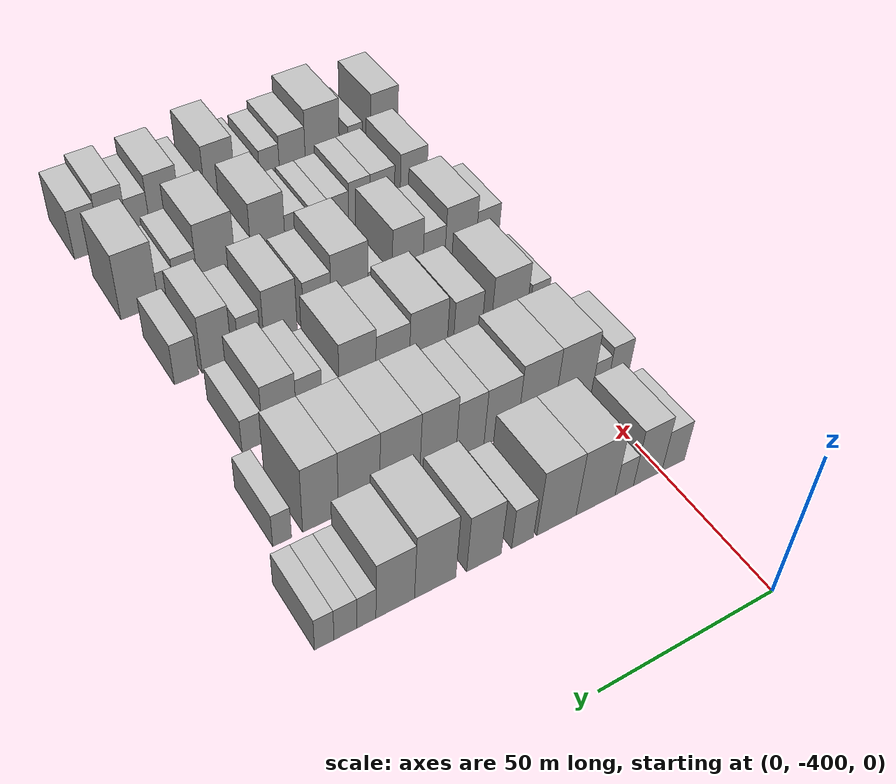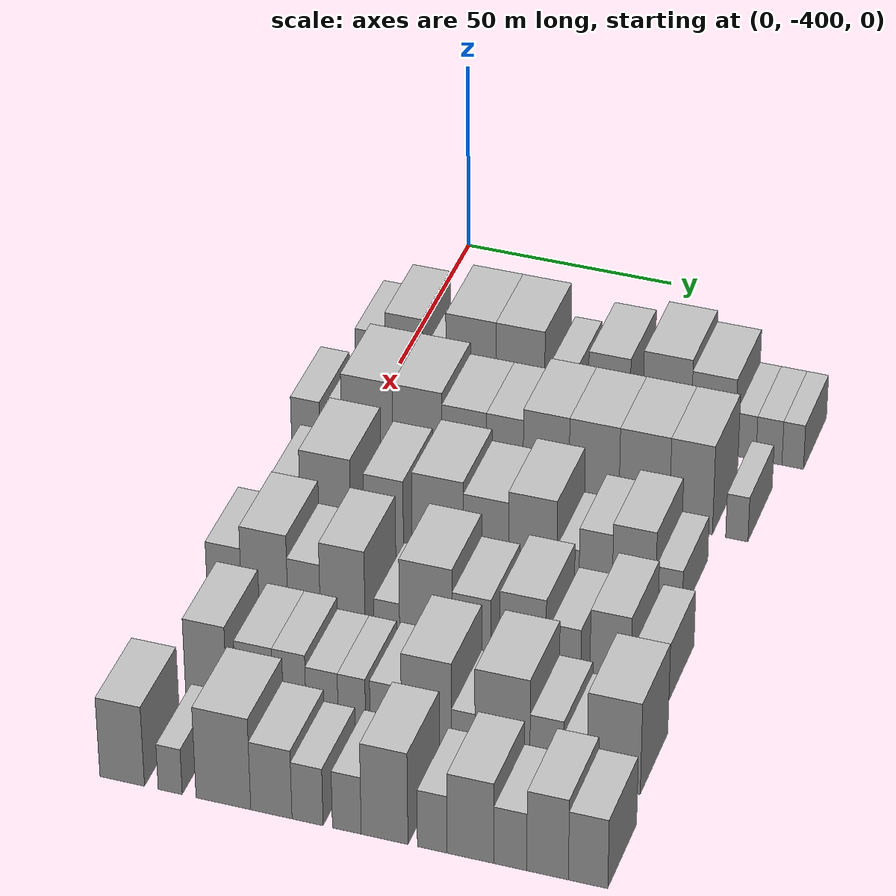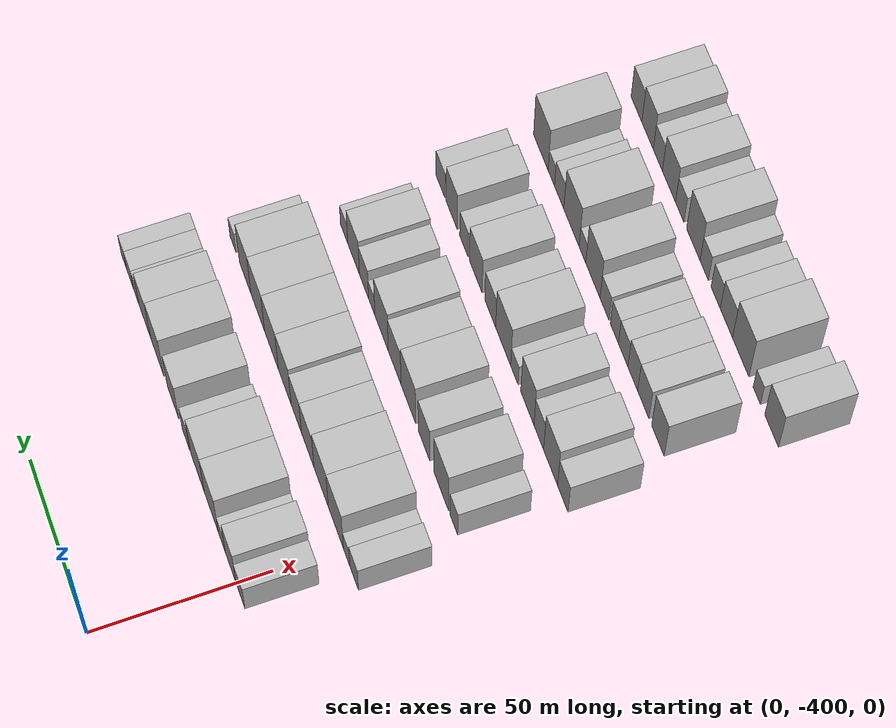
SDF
<sdf version="1.6">
 <world name="default">
  <model name="building_12">
   <static>1</static>
   <pose>50.0000 -403.6779 0 0.000000 0.000000 0.000000</pose>
   <link name="link">
    <pose>0 0 7.50 0 0 0</pose>
    <collision name="collision"><geometry><box><size>20.0000 7.1489 15.0000</size></box></geometry></collision>
    <visual name="visual">
     <cast_shadows>0</cast_shadows>
     <geometry><box><size>20.0000 7.1489 15.0000</size></box></geometry>
     <material>
      <script>
       <uri>model://HANNAS_wall/materials/scripts</uri>
       <uri>model://HANNAS_wall/materials/textures</uri>
       <name>vrc/HANNAS_wall</name>
      </script>
     </material>
    </visual>
   </link>
  </model>
  <model name="building_13">
   <static>1</static>
   <pose>50.0000 -395.6490 0 0.000000 0.000000 0.000000</pose>
   <link name="link">
    <pose>0 0 10.50 0 0 0</pose>
    <collision name="collision"><geometry><box><size>20.0000 8.9090 21.0000</size></box></geometry></collision>
    <visual name="visual">
     <cast_shadows>0</cast_shadows>
     <geometry><box><size>20.0000 8.9090 21.0000</size></box></geometry>
     <material>
      <script>
       <uri>model://HANNAS_wall/materials/scripts</uri>
       <uri>model://HANNAS_wall/materials/textures</uri>
       <name>vrc/HANNAS_wall</name>
      </script>
     </material>
    </visual>
   </link>
  </model>
  <model name="building_14">
   <static>1</static>
   <pose>50.0000 -388.3888 0 0.000000 0.000000 0.000000</pose>
   <link name="link">
    <pose>0 0 6.00 0 0 0</pose>
    <collision name="collision"><geometry><box><size>20.0000 5.6112 12.0000</size></box></geometry></collision>
    <visual name="visual">
     <cast_shadows>0</cast_shadows>
     <geometry><box><size>20.0000 5.6112 12.0000</size></box></geometry>
     <material>
      <script>
       <uri>model://HANNAS_wall/materials/scripts</uri>
       <uri>model://HANNAS_wall/materials/textures</uri>
       <name>vrc/HANNAS_wall</name>
      </script>
     </material>
    </visual>
   </link>
  </model>
  <model name="building_15">
   <static>1</static>
   <pose>50.0000 -379.6603 0 0.000000 0.000000 0.000000</pose>
   <link name="link">
    <pose>0 0 12.00 0 0 0</pose>
    <collision name="collision"><geometry><box><size>20.0000 11.8460 24.0000</size></box></geometry></collision>
    <visual name="visual">
     <cast_shadows>0</cast_shadows>
     <geometry><box><size>20.0000 11.8460 24.0000</size></box></geometry>
     <material>
      <script>
       <uri>model://HANNAS_wall/materials/scripts</uri>
       <uri>model://HANNAS_wall/materials/textures</uri>
       <name>vrc/HANNAS_wall</name>
      </script>
     </material>
    </visual>
   </link>
  </model>
  <model name="building_16">
   <static>1</static>
   <pose>50.0000 -367.9812 0 0.000000 0.000000 0.000000</pose>
   <link name="link">
    <pose>0 0 12.00 0 0 0</pose>
    <collision name="collision"><geometry><box><size>20.0000 11.5121 24.0000</size></box></geometry></collision>
    <visual name="visual">
     <cast_shadows>0</cast_shadows>
     <geometry><box><size>20.0000 11.5121 24.0000</size></box></geometry>
     <material>
      <script>
       <uri>model://HANNAS_wall/materials/scripts</uri>
       <uri>model://HANNAS_wall/materials/textures</uri>
       <name>vrc/HANNAS_wall</name>
      </script>
     </material>
    </visual>
   </link>
  </model>
  <model name="building_17">
   <static>1</static>
   <pose>50.0000 -358.0856 0 0.000000 0.000000 0.000000</pose>
   <link name="link">
    <pose>0 0 7.50 0 0 0</pose>
    <collision name="collision"><geometry><box><size>20.0000 6.2792 15.0000</size></box></geometry></collision>
    <visual name="visual">
     <cast_shadows>0</cast_shadows>
     <geometry><box><size>20.0000 6.2792 15.0000</size></box></geometry>
     <material>
      <script>
       <uri>model://HANNAS_wall/materials/scripts</uri>
       <uri>model://HANNAS_wall/materials/textures</uri>
       <name>vrc/HANNAS_wall</name>
      </script>
     </material>
    </visual>
   </link>
  </model>
  <model name="building_18">
   <static>1</static>
   <pose>50.0000 -347.0845 0 0.000000 0.000000 0.000000</pose>
   <link name="link">
    <pose>0 0 10.50 0 0 0</pose>
    <collision name="collision"><geometry><box><size>20.0000 9.7231 21.0000</size></box></geometry></collision>
    <visual name="visual">
     <cast_shadows>0</cast_shadows>
     <geometry><box><size>20.0000 9.7231 21.0000</size></box></geometry>
     <material>
      <script>
       <uri>model://HANNAS_wall/materials/scripts</uri>
       <uri>model://HANNAS_wall/materials/textures</uri>
       <name>vrc/HANNAS_wall</name>
      </script>
     </material>
    </visual>
   </link>
  </model>
  <model name="building_19">
   <static>1</static>
   <pose>50.0000 -333.5876 0 0.000000 0.000000 0.000000</pose>
   <link name="link">
    <pose>0 0 12.00 0 0 0</pose>
    <collision name="collision"><geometry><box><size>20.0000 11.2706 24.0000</size></box></geometry></collision>
    <visual name="visual">
     <cast_shadows>0</cast_shadows>
     <geometry><box><size>20.0000 11.2706 24.0000</size></box></geometry>
     <material>
      <script>
       <uri>model://HANNAS_wall/materials/scripts</uri>
       <uri>model://HANNAS_wall/materials/textures</uri>
       <name>vrc/HANNAS_wall</name>
      </script>
     </material>
    </visual>
   </link>
  </model>
  <model name="building_20">
   <static>1</static>
   <pose>50.0000 -322.8248 0 0.000000 0.000000 0.000000</pose>
   <link name="link">
    <pose>0 0 10.50 0 0 0</pose>
    <collision name="collision"><geometry><box><size>20.0000 10.2550 21.0000</size></box></geometry></collision>
    <visual name="visual">
     <cast_shadows>0</cast_shadows>
     <geometry><box><size>20.0000 10.2550 21.0000</size></box></geometry>
     <material>
      <script>
       <uri>model://HANNAS_wall/materials/scripts</uri>
       <uri>model://HANNAS_wall/materials/textures</uri>
       <name>vrc/HANNAS_wall</name>
      </script>
     </material>
    </visual>
   </link>
  </model>
  <model name="building_21">
   <static>1</static>
   <pose>50.0000 -315.2294 0 0.000000 0.000000 0.000000</pose>
   <link name="link">
    <pose>0 0 6.00 0 0 0</pose>
    <collision name="collision"><geometry><box><size>20.0000 4.9359 12.0000</size></box></geometry></collision>
    <visual name="visual">
     <cast_shadows>0</cast_shadows>
     <geometry><box><size>20.0000 4.9359 12.0000</size></box></geometry>
     <material>
      <script>
       <uri>model://HANNAS_wall/materials/scripts</uri>
       <uri>model://HANNAS_wall/materials/textures</uri>
       <name>vrc/HANNAS_wall</name>
      </script>
     </material>
    </visual>
   </link>
  </model>
  <model name="building_22">
   <static>1</static>
   <pose>50.0000 -309.7758 0 0.000000 0.000000 0.000000</pose>
   <link name="link">
    <pose>0 0 6.00 0 0 0</pose>
    <collision name="collision"><geometry><box><size>20.0000 5.9713 12.0000</size></box></geometry></collision>
    <visual name="visual">
     <cast_shadows>0</cast_shadows>
     <geometry><box><size>20.0000 5.9713 12.0000</size></box></geometry>
     <material>
      <script>
       <uri>model://HANNAS_wall/materials/scripts</uri>
       <uri>model://HANNAS_wall/materials/textures</uri>
       <name>vrc/HANNAS_wall</name>
      </script>
     </material>
    </visual>
   </link>
  </model>
  <model name="building_23">
   <static>1</static>
   <pose>50.0000 -304.3041 0 0.000000 0.000000 0.000000</pose>
   <link name="link">
    <pose>0 0 6.00 0 0 0</pose>
    <collision name="collision"><geometry><box><size>20.0000 4.9721 12.0000</size></box></geometry></collision>
    <visual name="visual">
     <cast_shadows>0</cast_shadows>
     <geometry><box><size>20.0000 4.9721 12.0000</size></box></geometry>
     <material>
      <script>
       <uri>model://HANNAS_wall/materials/scripts</uri>
       <uri>model://HANNAS_wall/materials/textures</uri>
       <name>vrc/HANNAS_wall</name>
      </script>
     </material>
    </visual>
   </link>
  </model>
  <model name="building_118">
   <static>1</static>
   <pose>79.0000 -408.8224 0 0.000000 0.000000 0.000000</pose>
   <link name="link">
    <pose>0 0 7.50 0 0 0</pose>
    <collision name="collision"><geometry><box><size>20.0000 6.7945 15.0000</size></box></geometry></collision>
    <visual name="visual">
     <cast_shadows>0</cast_shadows>
     <geometry><box><size>20.0000 6.7945 15.0000</size></box></geometry>
     <material>
      <script>
       <uri>model://HANNAS_wall/materials/scripts</uri>
       <uri>model://HANNAS_wall/materials/textures</uri>
       <name>vrc/HANNAS_wall</name>
      </script>
     </material>
    </visual>
   </link>
  </model>
  <model name="building_119">
   <static>1</static>
   <pose>79.0000 -402.8554 0 0.000000 0.000000 0.000000</pose>
   <link name="link">
    <pose>0 0 6.00 0 0 0</pose>
    <collision name="collision"><geometry><box><size>20.0000 5.1395 12.0000</size></box></geometry></collision>
    <visual name="visual">
     <cast_shadows>0</cast_shadows>
     <geometry><box><size>20.0000 5.1395 12.0000</size></box></geometry>
     <material>
      <script>
       <uri>model://HANNAS_wall/materials/scripts</uri>
       <uri>model://HANNAS_wall/materials/textures</uri>
       <name>vrc/HANNAS_wall</name>
      </script>
     </material>
    </visual>
   </link>
  </model>
  <model name="building_120">
   <static>1</static>
   <pose>79.0000 -394.3007 0 0.000000 0.000000 0.000000</pose>
   <link name="link">
    <pose>0 0 12.00 0 0 0</pose>
    <collision name="collision"><geometry><box><size>20.0000 11.9698 24.0000</size></box></geometry></collision>
    <visual name="visual">
     <cast_shadows>0</cast_shadows>
     <geometry><box><size>20.0000 11.9698 24.0000</size></box></geometry>
     <material>
      <script>
       <uri>model://HANNAS_wall/materials/scripts</uri>
       <uri>model://HANNAS_wall/materials/textures</uri>
       <name>vrc/HANNAS_wall</name>
      </script>
     </material>
    </visual>
   </link>
  </model>
  <model name="building_121">
   <static>1</static>
   <pose>79.0000 -382.5438 0 0.000000 0.000000 0.000000</pose>
   <link name="link">
    <pose>0 0 12.00 0 0 0</pose>
    <collision name="collision"><geometry><box><size>20.0000 11.5439 24.0000</size></box></geometry></collision>
    <visual name="visual">
     <cast_shadows>0</cast_shadows>
     <geometry><box><size>20.0000 11.5439 24.0000</size></box></geometry>
     <material>
      <script>
       <uri>model://HANNAS_wall/materials/scripts</uri>
       <uri>model://HANNAS_wall/materials/textures</uri>
       <name>vrc/HANNAS_wall</name>
      </script>
     </material>
    </visual>
   </link>
  </model>
  <model name="building_122">
   <static>1</static>
   <pose>79.0000 -371.6395 0 0.000000 0.000000 0.000000</pose>
   <link name="link">
    <pose>0 0 10.50 0 0 0</pose>
    <collision name="collision"><geometry><box><size>20.0000 10.2648 21.0000</size></box></geometry></collision>
    <visual name="visual">
     <cast_shadows>0</cast_shadows>
     <geometry><box><size>20.0000 10.2648 21.0000</size></box></geometry>
     <material>
      <script>
       <uri>model://HANNAS_wall/materials/scripts</uri>
       <uri>model://HANNAS_wall/materials/textures</uri>
       <name>vrc/HANNAS_wall</name>
      </script>
     </material>
    </visual>
   </link>
  </model>
  <model name="building_123">
   <static>1</static>
   <pose>79.0000 -362.2586 0 0.000000 0.000000 0.000000</pose>
   <link name="link">
    <pose>0 0 10.50 0 0 0</pose>
    <collision name="collision"><geometry><box><size>20.0000 8.4968 21.0000</size></box></geometry></collision>
    <visual name="visual">
     <cast_shadows>0</cast_shadows>
     <geometry><box><size>20.0000 8.4968 21.0000</size></box></geometry>
     <material>
      <script>
       <uri>model://HANNAS_wall/materials/scripts</uri>
       <uri>model://HANNAS_wall/materials/textures</uri>
       <name>vrc/HANNAS_wall</name>
      </script>
     </material>
    </visual>
   </link>
  </model>
  <model name="building_124">
   <static>1</static>
   <pose>79.0000 -352.7343 0 0.000000 0.000000 0.000000</pose>
   <link name="link">
    <pose>0 0 12.00 0 0 0</pose>
    <collision name="collision"><geometry><box><size>20.0000 10.5519 24.0000</size></box></geometry></collision>
    <visual name="visual">
     <cast_shadows>0</cast_shadows>
     <geometry><box><size>20.0000 10.5519 24.0000</size></box></geometry>
     <material>
      <script>
       <uri>model://HANNAS_wall/materials/scripts</uri>
       <uri>model://HANNAS_wall/materials/textures</uri>
       <name>vrc/HANNAS_wall</name>
      </script>
     </material>
    </visual>
   </link>
  </model>
  <model name="building_125">
   <static>1</static>
   <pose>79.0000 -341.7215 0 0.000000 0.000000 0.000000</pose>
   <link name="link">
    <pose>0 0 12.00 0 0 0</pose>
    <collision name="collision"><geometry><box><size>20.0000 11.4736 24.0000</size></box></geometry></collision>
    <visual name="visual">
     <cast_shadows>0</cast_shadows>
     <geometry><box><size>20.0000 11.4736 24.0000</size></box></geometry>
     <material>
      <script>
       <uri>model://HANNAS_wall/materials/scripts</uri>
       <uri>model://HANNAS_wall/materials/textures</uri>
       <name>vrc/HANNAS_wall</name>
      </script>
     </material>
    </visual>
   </link>
  </model>
  <model name="building_126">
   <static>1</static>
   <pose>79.0000 -330.2217 0 0.000000 0.000000 0.000000</pose>
   <link name="link">
    <pose>0 0 12.00 0 0 0</pose>
    <collision name="collision"><geometry><box><size>20.0000 11.5260 24.0000</size></box></geometry></collision>
    <visual name="visual">
     <cast_shadows>0</cast_shadows>
     <geometry><box><size>20.0000 11.5260 24.0000</size></box></geometry>
     <material>
      <script>
       <uri>model://HANNAS_wall/materials/scripts</uri>
       <uri>model://HANNAS_wall/materials/textures</uri>
       <name>vrc/HANNAS_wall</name>
      </script>
     </material>
    </visual>
   </link>
  </model>
  <model name="building_127">
   <static>1</static>
   <pose>79.0000 -319.5378 0 0.000000 0.000000 0.000000</pose>
   <link name="link">
    <pose>0 0 12.00 0 0 0</pose>
    <collision name="collision"><geometry><box><size>20.0000 9.8417 24.0000</size></box></geometry></collision>
    <visual name="visual">
     <cast_shadows>0</cast_shadows>
     <geometry><box><size>20.0000 9.8417 24.0000</size></box></geometry>
     <material>
      <script>
       <uri>model://HANNAS_wall/materials/scripts</uri>
       <uri>model://HANNAS_wall/materials/textures</uri>
       <name>vrc/HANNAS_wall</name>
      </script>
     </material>
    </visual>
   </link>
  </model>
  <model name="building_128">
   <static>1</static>
   <pose>79.0000 -309.0951 0 0.000000 0.000000 0.000000</pose>
   <link name="link">
    <pose>0 0 6.00 0 0 0</pose>
    <collision name="collision"><geometry><box><size>20.0000 5.0437 12.0000</size></box></geometry></collision>
    <visual name="visual">
     <cast_shadows>0</cast_shadows>
     <geometry><box><size>20.0000 5.0437 12.0000</size></box></geometry>
     <material>
      <script>
       <uri>model://HANNAS_wall/materials/scripts</uri>
       <uri>model://HANNAS_wall/materials/textures</uri>
       <name>vrc/HANNAS_wall</name>
      </script>
     </material>
    </visual>
   </link>
  </model>
  <model name="building_232">
   <static>1</static>
   <pose>108.0000 -403.5453 0 0.000000 0.000000 0.000000</pose>
   <link name="link">
    <pose>0 0 7.50 0 0 0</pose>
    <collision name="collision"><geometry><box><size>20.0000 6.0070 15.0000</size></box></geometry></collision>
    <visual name="visual">
     <cast_shadows>0</cast_shadows>
     <geometry><box><size>20.0000 6.0070 15.0000</size></box></geometry>
     <material>
      <script>
       <uri>model://HANNAS_wall/materials/scripts</uri>
       <uri>model://HANNAS_wall/materials/textures</uri>
       <name>vrc/HANNAS_wall</name>
      </script>
     </material>
    </visual>
   </link>
  </model>
  <model name="building_233">
   <static>1</static>
   <pose>108.0000 -393.7215 0 0.000000 0.000000 0.000000</pose>
   <link name="link">
    <pose>0 0 12.00 0 0 0</pose>
    <collision name="collision"><geometry><box><size>20.0000 11.6405 24.0000</size></box></geometry></collision>
    <visual name="visual">
     <cast_shadows>0</cast_shadows>
     <geometry><box><size>20.0000 11.6405 24.0000</size></box></geometry>
     <material>
      <script>
       <uri>model://HANNAS_wall/materials/scripts</uri>
       <uri>model://HANNAS_wall/materials/textures</uri>
       <name>vrc/HANNAS_wall</name>
      </script>
     </material>
    </visual>
   </link>
  </model>
  <model name="building_234">
   <static>1</static>
   <pose>108.0000 -380.3955 0 0.000000 0.000000 0.000000</pose>
   <link name="link">
    <pose>0 0 10.50 0 0 0</pose>
    <collision name="collision"><geometry><box><size>20.0000 9.0116 21.0000</size></box></geometry></collision>
    <visual name="visual">
     <cast_shadows>0</cast_shadows>
     <geometry><box><size>20.0000 9.0116 21.0000</size></box></geometry>
     <material>
      <script>
       <uri>model://HANNAS_wall/materials/scripts</uri>
       <uri>model://HANNAS_wall/materials/textures</uri>
       <name>vrc/HANNAS_wall</name>
      </script>
     </material>
    </visual>
   </link>
  </model>
  <model name="building_235">
   <static>1</static>
   <pose>108.0000 -368.0602 0 0.000000 0.000000 0.000000</pose>
   <link name="link">
    <pose>0 0 12.00 0 0 0</pose>
    <collision name="collision"><geometry><box><size>20.0000 11.6592 24.0000</size></box></geometry></collision>
    <visual name="visual">
     <cast_shadows>0</cast_shadows>
     <geometry><box><size>20.0000 11.6592 24.0000</size></box></geometry>
     <material>
      <script>
       <uri>model://HANNAS_wall/materials/scripts</uri>
       <uri>model://HANNAS_wall/materials/textures</uri>
       <name>vrc/HANNAS_wall</name>
      </script>
     </material>
    </visual>
   </link>
  </model>
  <model name="building_236">
   <static>1</static>
   <pose>108.0000 -357.1429 0 0.000000 0.000000 0.000000</pose>
   <link name="link">
    <pose>0 0 10.50 0 0 0</pose>
    <collision name="collision"><geometry><box><size>20.0000 10.1754 21.0000</size></box></geometry></collision>
    <visual name="visual">
     <cast_shadows>0</cast_shadows>
     <geometry><box><size>20.0000 10.1754 21.0000</size></box></geometry>
     <material>
      <script>
       <uri>model://HANNAS_wall/materials/scripts</uri>
       <uri>model://HANNAS_wall/materials/textures</uri>
       <name>vrc/HANNAS_wall</name>
      </script>
     </material>
    </visual>
   </link>
  </model>
  <model name="building_237">
   <static>1</static>
   <pose>108.0000 -346.6223 0 0.000000 0.000000 0.000000</pose>
   <link name="link">
    <pose>0 0 12.00 0 0 0</pose>
    <collision name="collision"><geometry><box><size>20.0000 10.8658 24.0000</size></box></geometry></collision>
    <visual name="visual">
     <cast_shadows>0</cast_shadows>
     <geometry><box><size>20.0000 10.8658 24.0000</size></box></geometry>
     <material>
      <script>
       <uri>model://HANNAS_wall/materials/scripts</uri>
       <uri>model://HANNAS_wall/materials/textures</uri>
       <name>vrc/HANNAS_wall</name>
      </script>
     </material>
    </visual>
   </link>
  </model>
  <model name="building_238">
   <static>1</static>
   <pose>108.0000 -338.6796 0 0.000000 0.000000 0.000000</pose>
   <link name="link">
    <pose>0 0 6.00 0 0 0</pose>
    <collision name="collision"><geometry><box><size>20.0000 5.0195 12.0000</size></box></geometry></collision>
    <visual name="visual">
     <cast_shadows>0</cast_shadows>
     <geometry><box><size>20.0000 5.0195 12.0000</size></box></geometry>
     <material>
      <script>
       <uri>model://HANNAS_wall/materials/scripts</uri>
       <uri>model://HANNAS_wall/materials/textures</uri>
       <name>vrc/HANNAS_wall</name>
      </script>
     </material>
    </visual>
   </link>
  </model>
  <model name="building_239">
   <static>1</static>
   <pose>108.0000 -332.4511 0 0.000000 0.000000 0.000000</pose>
   <link name="link">
    <pose>0 0 9.00 0 0 0</pose>
    <collision name="collision"><geometry><box><size>20.0000 7.4375 18.0000</size></box></geometry></collision>
    <visual name="visual">
     <cast_shadows>0</cast_shadows>
     <geometry><box><size>20.0000 7.4375 18.0000</size></box></geometry>
     <material>
      <script>
       <uri>model://HANNAS_wall/materials/scripts</uri>
       <uri>model://HANNAS_wall/materials/textures</uri>
       <name>vrc/HANNAS_wall</name>
      </script>
     </material>
    </visual>
   </link>
  </model>
  <model name="building_240">
   <static>1</static>
   <pose>108.0000 -323.9206 0 0.000000 0.000000 0.000000</pose>
   <link name="link">
    <pose>0 0 10.50 0 0 0</pose>
    <collision name="collision"><geometry><box><size>20.0000 9.6234 21.0000</size></box></geometry></collision>
    <visual name="visual">
     <cast_shadows>0</cast_shadows>
     <geometry><box><size>20.0000 9.6234 21.0000</size></box></geometry>
     <material>
      <script>
       <uri>model://HANNAS_wall/materials/scripts</uri>
       <uri>model://HANNAS_wall/materials/textures</uri>
       <name>vrc/HANNAS_wall</name>
      </script>
     </material>
    </visual>
   </link>
  </model>
  <model name="building_241">
   <static>1</static>
   <pose>108.0000 -316.1131 0 0.000000 0.000000 0.000000</pose>
   <link name="link">
    <pose>0 0 6.00 0 0 0</pose>
    <collision name="collision"><geometry><box><size>20.0000 5.9916 12.0000</size></box></geometry></collision>
    <visual name="visual">
     <cast_shadows>0</cast_shadows>
     <geometry><box><size>20.0000 5.9916 12.0000</size></box></geometry>
     <material>
      <script>
       <uri>model://HANNAS_wall/materials/scripts</uri>
       <uri>model://HANNAS_wall/materials/textures</uri>
       <name>vrc/HANNAS_wall</name>
      </script>
     </material>
    </visual>
   </link>
  </model>
  <model name="building_339">
   <static>1</static>
   <pose>137.0000 -406.2784 0 0.000000 0.000000 0.000000</pose>
   <link name="link">
    <pose>0 0 9.00 0 0 0</pose>
    <collision name="collision"><geometry><box><size>20.0000 7.8152 18.0000</size></box></geometry></collision>
    <visual name="visual">
     <cast_shadows>0</cast_shadows>
     <geometry><box><size>20.0000 7.8152 18.0000</size></box></geometry>
     <material>
      <script>
       <uri>model://HANNAS_wall/materials/scripts</uri>
       <uri>model://HANNAS_wall/materials/textures</uri>
       <name>vrc/HANNAS_wall</name>
      </script>
     </material>
    </visual>
   </link>
  </model>
  <model name="building_340">
   <static>1</static>
   <pose>137.0000 -397.1209 0 0.000000 0.000000 0.000000</pose>
   <link name="link">
    <pose>0 0 12.00 0 0 0</pose>
    <collision name="collision"><geometry><box><size>20.0000 10.4997 24.0000</size></box></geometry></collision>
    <visual name="visual">
     <cast_shadows>0</cast_shadows>
     <geometry><box><size>20.0000 10.4997 24.0000</size></box></geometry>
     <material>
      <script>
       <uri>model://HANNAS_wall/materials/scripts</uri>
       <uri>model://HANNAS_wall/materials/textures</uri>
       <name>vrc/HANNAS_wall</name>
      </script>
     </material>
    </visual>
   </link>
  </model>
  <model name="building_341">
   <static>1</static>
   <pose>137.0000 -388.2223 0 0.000000 0.000000 0.000000</pose>
   <link name="link">
    <pose>0 0 9.00 0 0 0</pose>
    <collision name="collision"><geometry><box><size>20.0000 7.2976 18.0000</size></box></geometry></collision>
    <visual name="visual">
     <cast_shadows>0</cast_shadows>
     <geometry><box><size>20.0000 7.2976 18.0000</size></box></geometry>
     <material>
      <script>
       <uri>model://HANNAS_wall/materials/scripts</uri>
       <uri>model://HANNAS_wall/materials/textures</uri>
       <name>vrc/HANNAS_wall</name>
      </script>
     </material>
    </visual>
   </link>
  </model>
  <model name="building_342">
   <static>1</static>
   <pose>137.0000 -379.5376 0 0.000000 0.000000 0.000000</pose>
   <link name="link">
    <pose>0 0 12.00 0 0 0</pose>
    <collision name="collision"><geometry><box><size>20.0000 10.0719 24.0000</size></box></geometry></collision>
    <visual name="visual">
     <cast_shadows>0</cast_shadows>
     <geometry><box><size>20.0000 10.0719 24.0000</size></box></geometry>
     <material>
      <script>
       <uri>model://HANNAS_wall/materials/scripts</uri>
       <uri>model://HANNAS_wall/materials/textures</uri>
       <name>vrc/HANNAS_wall</name>
      </script>
     </material>
    </visual>
   </link>
  </model>
  <model name="building_343">
   <static>1</static>
   <pose>137.0000 -369.6562 0 0.000000 0.000000 0.000000</pose>
   <link name="link">
    <pose>0 0 6.00 0 0 0</pose>
    <collision name="collision"><geometry><box><size>20.0000 5.6908 12.0000</size></box></geometry></collision>
    <visual name="visual">
     <cast_shadows>0</cast_shadows>
     <geometry><box><size>20.0000 5.6908 12.0000</size></box></geometry>
     <material>
      <script>
       <uri>model://HANNAS_wall/materials/scripts</uri>
       <uri>model://HANNAS_wall/materials/textures</uri>
       <name>vrc/HANNAS_wall</name>
      </script>
     </material>
    </visual>
   </link>
  </model>
  <model name="building_344">
   <static>1</static>
   <pose>137.0000 -360.9679 0 0.000000 0.000000 0.000000</pose>
   <link name="link">
    <pose>0 0 12.00 0 0 0</pose>
    <collision name="collision"><geometry><box><size>20.0000 11.6857 24.0000</size></box></geometry></collision>
    <visual name="visual">
     <cast_shadows>0</cast_shadows>
     <geometry><box><size>20.0000 11.6857 24.0000</size></box></geometry>
     <material>
      <script>
       <uri>model://HANNAS_wall/materials/scripts</uri>
       <uri>model://HANNAS_wall/materials/textures</uri>
       <name>vrc/HANNAS_wall</name>
      </script>
     </material>
    </visual>
   </link>
  </model>
  <model name="building_345">
   <static>1</static>
   <pose>137.0000 -350.8395 0 0.000000 0.000000 0.000000</pose>
   <link name="link">
    <pose>0 0 9.00 0 0 0</pose>
    <collision name="collision"><geometry><box><size>20.0000 8.5712 18.0000</size></box></geometry></collision>
    <visual name="visual">
     <cast_shadows>0</cast_shadows>
     <geometry><box><size>20.0000 8.5712 18.0000</size></box></geometry>
     <material>
      <script>
       <uri>model://HANNAS_wall/materials/scripts</uri>
       <uri>model://HANNAS_wall/materials/textures</uri>
       <name>vrc/HANNAS_wall</name>
      </script>
     </material>
    </visual>
   </link>
  </model>
  <model name="building_346">
   <static>1</static>
   <pose>137.0000 -339.5067 0 0.000000 0.000000 0.000000</pose>
   <link name="link">
    <pose>0 0 10.50 0 0 0</pose>
    <collision name="collision"><geometry><box><size>20.0000 10.0944 21.0000</size></box></geometry></collision>
    <visual name="visual">
     <cast_shadows>0</cast_shadows>
     <geometry><box><size>20.0000 10.0944 21.0000</size></box></geometry>
     <material>
      <script>
       <uri>model://HANNAS_wall/materials/scripts</uri>
       <uri>model://HANNAS_wall/materials/textures</uri>
       <name>vrc/HANNAS_wall</name>
      </script>
     </material>
    </visual>
   </link>
  </model>
  <model name="building_347">
   <static>1</static>
   <pose>137.0000 -330.1479 0 0.000000 0.000000 0.000000</pose>
   <link name="link">
    <pose>0 0 7.50 0 0 0</pose>
    <collision name="collision"><geometry><box><size>20.0000 6.6231 15.0000</size></box></geometry></collision>
    <visual name="visual">
     <cast_shadows>0</cast_shadows>
     <geometry><box><size>20.0000 6.6231 15.0000</size></box></geometry>
     <material>
      <script>
       <uri>model://HANNAS_wall/materials/scripts</uri>
       <uri>model://HANNAS_wall/materials/textures</uri>
       <name>vrc/HANNAS_wall</name>
      </script>
     </material>
    </visual>
   </link>
  </model>
  <model name="building_348">
   <static>1</static>
   <pose>137.0000 -320.3990 0 0.000000 0.000000 0.000000</pose>
   <link name="link">
    <pose>0 0 10.50 0 0 0</pose>
    <collision name="collision"><geometry><box><size>20.0000 8.8747 21.0000</size></box></geometry></collision>
    <visual name="visual">
     <cast_shadows>0</cast_shadows>
     <geometry><box><size>20.0000 8.8747 21.0000</size></box></geometry>
     <material>
      <script>
       <uri>model://HANNAS_wall/materials/scripts</uri>
       <uri>model://HANNAS_wall/materials/textures</uri>
       <name>vrc/HANNAS_wall</name>
      </script>
     </material>
    </visual>
   </link>
  </model>
  <model name="building_349">
   <static>1</static>
   <pose>137.0000 -311.4278 0 0.000000 0.000000 0.000000</pose>
   <link name="link">
    <pose>0 0 7.50 0 0 0</pose>
    <collision name="collision"><geometry><box><size>20.0000 7.0675 15.0000</size></box></geometry></collision>
    <visual name="visual">
     <cast_shadows>0</cast_shadows>
     <geometry><box><size>20.0000 7.0675 15.0000</size></box></geometry>
     <material>
      <script>
       <uri>model://HANNAS_wall/materials/scripts</uri>
       <uri>model://HANNAS_wall/materials/textures</uri>
       <name>vrc/HANNAS_wall</name>
      </script>
     </material>
    </visual>
   </link>
  </model>
  <model name="building_456">
   <static>1</static>
   <pose>166.0000 -399.4507 0 0.000000 0.000000 0.000000</pose>
   <link name="link">
    <pose>0 0 10.50 0 0 0</pose>
    <collision name="collision"><geometry><box><size>20.0000 9.1858 21.0000</size></box></geometry></collision>
    <visual name="visual">
     <cast_shadows>0</cast_shadows>
     <geometry><box><size>20.0000 9.1858 21.0000</size></box></geometry>
     <material>
      <script>
       <uri>model://HANNAS_wall/materials/scripts</uri>
       <uri>model://HANNAS_wall/materials/textures</uri>
       <name>vrc/HANNAS_wall</name>
      </script>
     </material>
    </visual>
   </link>
  </model>
  <model name="building_457">
   <static>1</static>
   <pose>166.0000 -388.6997 0 0.000000 0.000000 0.000000</pose>
   <link name="link">
    <pose>0 0 9.00 0 0 0</pose>
    <collision name="collision"><geometry><box><size>20.0000 8.3162 18.0000</size></box></geometry></collision>
    <visual name="visual">
     <cast_shadows>0</cast_shadows>
     <geometry><box><size>20.0000 8.3162 18.0000</size></box></geometry>
     <material>
      <script>
       <uri>model://HANNAS_wall/materials/scripts</uri>
       <uri>model://HANNAS_wall/materials/textures</uri>
       <name>vrc/HANNAS_wall</name>
      </script>
     </material>
    </visual>
   </link>
  </model>
  <model name="building_458">
   <static>1</static>
   <pose>166.0000 -380.9260 0 0.000000 0.000000 0.000000</pose>
   <link name="link">
    <pose>0 0 9.00 0 0 0</pose>
    <collision name="collision"><geometry><box><size>20.0000 7.2312 18.0000</size></box></geometry></collision>
    <visual name="visual">
     <cast_shadows>0</cast_shadows>
     <geometry><box><size>20.0000 7.2312 18.0000</size></box></geometry>
     <material>
      <script>
       <uri>model://HANNAS_wall/materials/scripts</uri>
       <uri>model://HANNAS_wall/materials/textures</uri>
       <name>vrc/HANNAS_wall</name>
      </script>
     </material>
    </visual>
   </link>
  </model>
  <model name="building_459">
   <static>1</static>
   <pose>166.0000 -373.7970 0 0.000000 0.000000 0.000000</pose>
   <link name="link">
    <pose>0 0 7.50 0 0 0</pose>
    <collision name="collision"><geometry><box><size>20.0000 7.0267 15.0000</size></box></geometry></collision>
    <visual name="visual">
     <cast_shadows>0</cast_shadows>
     <geometry><box><size>20.0000 7.0267 15.0000</size></box></geometry>
     <material>
      <script>
       <uri>model://HANNAS_wall/materials/scripts</uri>
       <uri>model://HANNAS_wall/materials/textures</uri>
       <name>vrc/HANNAS_wall</name>
      </script>
     </material>
    </visual>
   </link>
  </model>
  <model name="building_460">
   <static>1</static>
   <pose>166.0000 -367.2748 0 0.000000 0.000000 0.000000</pose>
   <link name="link">
    <pose>0 0 7.50 0 0 0</pose>
    <collision name="collision"><geometry><box><size>20.0000 6.0176 15.0000</size></box></geometry></collision>
    <visual name="visual">
     <cast_shadows>0</cast_shadows>
     <geometry><box><size>20.0000 6.0176 15.0000</size></box></geometry>
     <material>
      <script>
       <uri>model://HANNAS_wall/materials/scripts</uri>
       <uri>model://HANNAS_wall/materials/textures</uri>
       <name>vrc/HANNAS_wall</name>
      </script>
     </material>
    </visual>
   </link>
  </model>
  <model name="building_461">
   <static>1</static>
   <pose>166.0000 -359.8484 0 0.000000 0.000000 0.000000</pose>
   <link name="link">
    <pose>0 0 7.50 0 0 0</pose>
    <collision name="collision"><geometry><box><size>20.0000 6.8352 15.0000</size></box></geometry></collision>
    <visual name="visual">
     <cast_shadows>0</cast_shadows>
     <geometry><box><size>20.0000 6.8352 15.0000</size></box></geometry>
     <material>
      <script>
       <uri>model://HANNAS_wall/materials/scripts</uri>
       <uri>model://HANNAS_wall/materials/textures</uri>
       <name>vrc/HANNAS_wall</name>
      </script>
     </material>
    </visual>
   </link>
  </model>
  <model name="building_462">
   <static>1</static>
   <pose>166.0000 -351.0096 0 0.000000 0.000000 0.000000</pose>
   <link name="link">
    <pose>0 0 12.00 0 0 0</pose>
    <collision name="collision"><geometry><box><size>20.0000 10.8424 24.0000</size></box></geometry></collision>
    <visual name="visual">
     <cast_shadows>0</cast_shadows>
     <geometry><box><size>20.0000 10.8424 24.0000</size></box></geometry>
     <material>
      <script>
       <uri>model://HANNAS_wall/materials/scripts</uri>
       <uri>model://HANNAS_wall/materials/textures</uri>
       <name>vrc/HANNAS_wall</name>
      </script>
     </material>
    </visual>
   </link>
  </model>
  <model name="building_463">
   <static>1</static>
   <pose>166.0000 -343.0741 0 0.000000 0.000000 0.000000</pose>
   <link name="link">
    <pose>0 0 6.00 0 0 0</pose>
    <collision name="collision"><geometry><box><size>20.0000 5.0286 12.0000</size></box></geometry></collision>
    <visual name="visual">
     <cast_shadows>0</cast_shadows>
     <geometry><box><size>20.0000 5.0286 12.0000</size></box></geometry>
     <material>
      <script>
       <uri>model://HANNAS_wall/materials/scripts</uri>
       <uri>model://HANNAS_wall/materials/textures</uri>
       <name>vrc/HANNAS_wall</name>
      </script>
     </material>
    </visual>
   </link>
  </model>
  <model name="building_464">
   <static>1</static>
   <pose>166.0000 -334.6502 0 0.000000 0.000000 0.000000</pose>
   <link name="link">
    <pose>0 0 12.00 0 0 0</pose>
    <collision name="collision"><geometry><box><size>20.0000 11.8193 24.0000</size></box></geometry></collision>
    <visual name="visual">
     <cast_shadows>0</cast_shadows>
     <geometry><box><size>20.0000 11.8193 24.0000</size></box></geometry>
     <material>
      <script>
       <uri>model://HANNAS_wall/materials/scripts</uri>
       <uri>model://HANNAS_wall/materials/textures</uri>
       <name>vrc/HANNAS_wall</name>
      </script>
     </material>
    </visual>
   </link>
  </model>
  <model name="building_465">
   <static>1</static>
   <pose>166.0000 -325.1316 0 0.000000 0.000000 0.000000</pose>
   <link name="link">
    <pose>0 0 7.50 0 0 0</pose>
    <collision name="collision"><geometry><box><size>20.0000 7.2179 15.0000</size></box></geometry></collision>
    <visual name="visual">
     <cast_shadows>0</cast_shadows>
     <geometry><box><size>20.0000 7.2179 15.0000</size></box></geometry>
     <material>
      <script>
       <uri>model://HANNAS_wall/materials/scripts</uri>
       <uri>model://HANNAS_wall/materials/textures</uri>
       <name>vrc/HANNAS_wall</name>
      </script>
     </material>
    </visual>
   </link>
  </model>
  <model name="building_466">
   <static>1</static>
   <pose>166.0000 -319.0346 0 0.000000 0.000000 0.000000</pose>
   <link name="link">
    <pose>0 0 6.00 0 0 0</pose>
    <collision name="collision"><geometry><box><size>20.0000 4.9762 12.0000</size></box></geometry></collision>
    <visual name="visual">
     <cast_shadows>0</cast_shadows>
     <geometry><box><size>20.0000 4.9762 12.0000</size></box></geometry>
     <material>
      <script>
       <uri>model://HANNAS_wall/materials/scripts</uri>
       <uri>model://HANNAS_wall/materials/textures</uri>
       <name>vrc/HANNAS_wall</name>
      </script>
     </material>
    </visual>
   </link>
  </model>
  <model name="building_467">
   <static>1</static>
   <pose>166.0000 -310.8578 0 0.000000 0.000000 0.000000</pose>
   <link name="link">
    <pose>0 0 12.00 0 0 0</pose>
    <collision name="collision"><geometry><box><size>20.0000 11.3774 24.0000</size></box></geometry></collision>
    <visual name="visual">
     <cast_shadows>0</cast_shadows>
     <geometry><box><size>20.0000 11.3774 24.0000</size></box></geometry>
     <material>
      <script>
       <uri>model://HANNAS_wall/materials/scripts</uri>
       <uri>model://HANNAS_wall/materials/textures</uri>
       <name>vrc/HANNAS_wall</name>
      </script>
     </material>
    </visual>
   </link>
  </model>
  <model name="building_574">
   <static>1</static>
   <pose>195.0000 -406.7819 0 0.000000 0.000000 0.000000</pose>
   <link name="link">
    <pose>0 0 10.50 0 0 0</pose>
    <collision name="collision"><geometry><box><size>20.0000 9.7559 21.0000</size></box></geometry></collision>
    <visual name="visual">
     <cast_shadows>0</cast_shadows>
     <geometry><box><size>20.0000 9.7559 21.0000</size></box></geometry>
     <material>
      <script>
       <uri>model://HANNAS_wall/materials/scripts</uri>
       <uri>model://HANNAS_wall/materials/textures</uri>
       <name>vrc/HANNAS_wall</name>
      </script>
     </material>
    </visual>
   </link>
  </model>
  <model name="building_575">
   <static>1</static>
   <pose>195.0000 -396.2867 0 0.000000 0.000000 0.000000</pose>
   <link name="link">
    <pose>0 0 6.00 0 0 0</pose>
    <collision name="collision"><geometry><box><size>20.0000 5.2344 12.0000</size></box></geometry></collision>
    <visual name="visual">
     <cast_shadows>0</cast_shadows>
     <geometry><box><size>20.0000 5.2344 12.0000</size></box></geometry>
     <material>
      <script>
       <uri>model://HANNAS_wall/materials/scripts</uri>
       <uri>model://HANNAS_wall/materials/textures</uri>
       <name>vrc/HANNAS_wall</name>
      </script>
     </material>
    </visual>
   </link>
  </model>
  <model name="building_576">
   <static>1</static>
   <pose>195.0000 -384.7399 0 0.000000 0.000000 0.000000</pose>
   <link name="link">
    <pose>0 0 12.00 0 0 0</pose>
    <collision name="collision"><geometry><box><size>20.0000 11.8593 24.0000</size></box></geometry></collision>
    <visual name="visual">
     <cast_shadows>0</cast_shadows>
     <geometry><box><size>20.0000 11.8593 24.0000</size></box></geometry>
     <material>
      <script>
       <uri>model://HANNAS_wall/materials/scripts</uri>
       <uri>model://HANNAS_wall/materials/textures</uri>
       <name>vrc/HANNAS_wall</name>
      </script>
     </material>
    </visual>
   </link>
  </model>
  <model name="building_577">
   <static>1</static>
   <pose>195.0000 -374.3630 0 0.000000 0.000000 0.000000</pose>
   <link name="link">
    <pose>0 0 9.00 0 0 0</pose>
    <collision name="collision"><geometry><box><size>20.0000 8.8945 18.0000</size></box></geometry></collision>
    <visual name="visual">
     <cast_shadows>0</cast_shadows>
     <geometry><box><size>20.0000 8.8945 18.0000</size></box></geometry>
     <material>
      <script>
       <uri>model://HANNAS_wall/materials/scripts</uri>
       <uri>model://HANNAS_wall/materials/textures</uri>
       <name>vrc/HANNAS_wall</name>
      </script>
     </material>
    </visual>
   </link>
  </model>
  <model name="building_578">
   <static>1</static>
   <pose>195.0000 -366.5811 0 0.000000 0.000000 0.000000</pose>
   <link name="link">
    <pose>0 0 7.50 0 0 0</pose>
    <collision name="collision"><geometry><box><size>20.0000 6.6693 15.0000</size></box></geometry></collision>
    <visual name="visual">
     <cast_shadows>0</cast_shadows>
     <geometry><box><size>20.0000 6.6693 15.0000</size></box></geometry>
     <material>
      <script>
       <uri>model://HANNAS_wall/materials/scripts</uri>
       <uri>model://HANNAS_wall/materials/textures</uri>
       <name>vrc/HANNAS_wall</name>
      </script>
     </material>
    </visual>
   </link>
  </model>
  <model name="building_579">
   <static>1</static>
   <pose>195.0000 -358.1651 0 0.000000 0.000000 0.000000</pose>
   <link name="link">
    <pose>0 0 7.50 0 0 0</pose>
    <collision name="collision"><geometry><box><size>20.0000 6.1628 15.0000</size></box></geometry></collision>
    <visual name="visual">
     <cast_shadows>0</cast_shadows>
     <geometry><box><size>20.0000 6.1628 15.0000</size></box></geometry>
     <material>
      <script>
       <uri>model://HANNAS_wall/materials/scripts</uri>
       <uri>model://HANNAS_wall/materials/textures</uri>
       <name>vrc/HANNAS_wall</name>
      </script>
     </material>
    </visual>
   </link>
  </model>
  <model name="building_580">
   <static>1</static>
   <pose>195.0000 -350.1214 0 0.000000 0.000000 0.000000</pose>
   <link name="link">
    <pose>0 0 12.00 0 0 0</pose>
    <collision name="collision"><geometry><box><size>20.0000 9.9246 24.0000</size></box></geometry></collision>
    <visual name="visual">
     <cast_shadows>0</cast_shadows>
     <geometry><box><size>20.0000 9.9246 24.0000</size></box></geometry>
     <material>
      <script>
       <uri>model://HANNAS_wall/materials/scripts</uri>
       <uri>model://HANNAS_wall/materials/textures</uri>
       <name>vrc/HANNAS_wall</name>
      </script>
     </material>
    </visual>
   </link>
  </model>
  <model name="building_581">
   <static>1</static>
   <pose>195.0000 -340.0093 0 0.000000 0.000000 0.000000</pose>
   <link name="link">
    <pose>0 0 7.50 0 0 0</pose>
    <collision name="collision"><geometry><box><size>20.0000 6.2997 15.0000</size></box></geometry></collision>
    <visual name="visual">
     <cast_shadows>0</cast_shadows>
     <geometry><box><size>20.0000 6.2997 15.0000</size></box></geometry>
     <material>
      <script>
       <uri>model://HANNAS_wall/materials/scripts</uri>
       <uri>model://HANNAS_wall/materials/textures</uri>
       <name>vrc/HANNAS_wall</name>
      </script>
     </material>
    </visual>
   </link>
  </model>
  <model name="building_582">
   <static>1</static>
   <pose>195.0000 -331.9499 0 0.000000 0.000000 0.000000</pose>
   <link name="link">
    <pose>0 0 10.50 0 0 0</pose>
    <collision name="collision"><geometry><box><size>20.0000 9.8190 21.0000</size></box></geometry></collision>
    <visual name="visual">
     <cast_shadows>0</cast_shadows>
     <geometry><box><size>20.0000 9.8190 21.0000</size></box></geometry>
     <material>
      <script>
       <uri>model://HANNAS_wall/materials/scripts</uri>
       <uri>model://HANNAS_wall/materials/textures</uri>
       <name>vrc/HANNAS_wall</name>
      </script>
     </material>
    </visual>
   </link>
  </model>
  <model name="building_583">
   <static>1</static>
   <pose>195.0000 -323.5968 0 0.000000 0.000000 0.000000</pose>
   <link name="link">
    <pose>0 0 7.50 0 0 0</pose>
    <collision name="collision"><geometry><box><size>20.0000 6.8873 15.0000</size></box></geometry></collision>
    <visual name="visual">
     <cast_shadows>0</cast_shadows>
     <geometry><box><size>20.0000 6.8873 15.0000</size></box></geometry>
     <material>
      <script>
       <uri>model://HANNAS_wall/materials/scripts</uri>
       <uri>model://HANNAS_wall/materials/textures</uri>
       <name>vrc/HANNAS_wall</name>
      </script>
     </material>
    </visual>
   </link>
  </model>
  <model name="building_584">
   <static>1</static>
   <pose>195.0000 -315.8096 0 0.000000 0.000000 0.000000</pose>
   <link name="link">
    <pose>0 0 10.50 0 0 0</pose>
    <collision name="collision"><geometry><box><size>20.0000 8.6871 21.0000</size></box></geometry></collision>
    <visual name="visual">
     <cast_shadows>0</cast_shadows>
     <geometry><box><size>20.0000 8.6871 21.0000</size></box></geometry>
     <material>
      <script>
       <uri>model://HANNAS_wall/materials/scripts</uri>
       <uri>model://HANNAS_wall/materials/textures</uri>
       <name>vrc/HANNAS_wall</name>
      </script>
     </material>
    </visual>
   </link>
  </model>
  <model name="building_585">
   <static>1</static>
   <pose>195.0000 -307.3626 0 0.000000 0.000000 0.000000</pose>
   <link name="link">
    <pose>0 0 9.00 0 0 0</pose>
    <collision name="collision"><geometry><box><size>20.0000 8.2069 18.0000</size></box></geometry></collision>
    <visual name="visual">
     <cast_shadows>0</cast_shadows>
     <geometry><box><size>20.0000 8.2069 18.0000</size></box></geometry>
     <material>
      <script>
       <uri>model://HANNAS_wall/materials/scripts</uri>
       <uri>model://HANNAS_wall/materials/textures</uri>
       <name>vrc/HANNAS_wall</name>
      </script>
     </material>
    </visual>
   </link>
  </model>
 </world>
</sdf>
